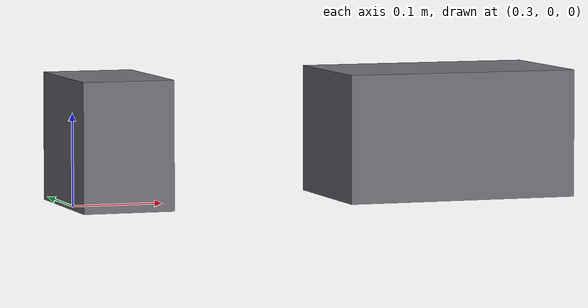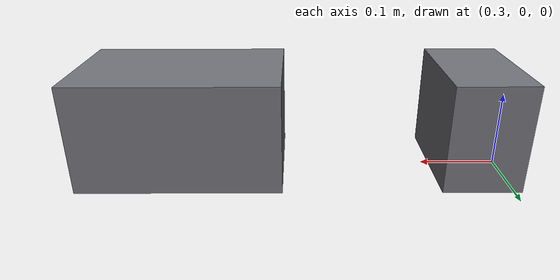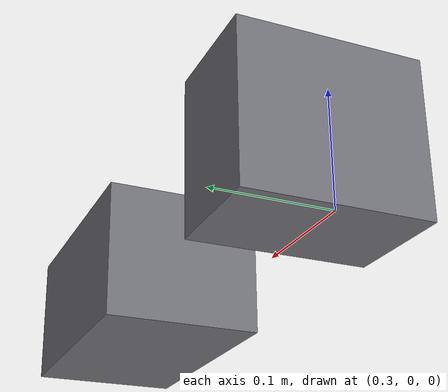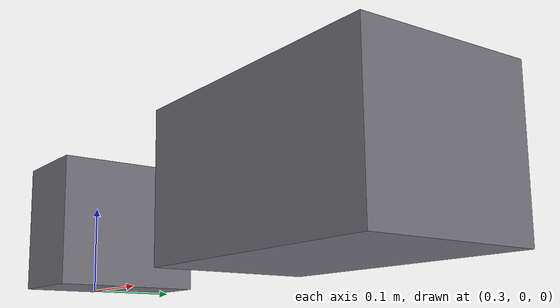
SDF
<?xml version="1.0"?>
<sdf version="1.7">
  <model name="oim_shelf_gap"><static>true</static>
    <link name="shelf_1">
      <pose>0.72 0.0 0.07 0 0 0</pose>
      <collision name="collision"><geometry><box><size>0.26 0.16 0.14</size></box></geometry>
        <surface><friction><ode><mu>0.8</mu><mu2>0.8</mu2></ode></friction></surface>
      </collision>
      <visual name="visual"><geometry><box><size>0.26 0.16 0.14</size></box></geometry>
        <material><diffuse>0.45 0.45 0.48 1</diffuse></material></visual>
    </link>
    <link name="shelf_2">
      <pose>0.33999999999999997 0.0 0.07 0 0 0</pose>
      <collision name="collision"><geometry><box><size>0.1 0.16 0.14</size></box></geometry>
        <surface><friction><ode><mu>0.8</mu><mu2>0.8</mu2></ode></friction></surface>
      </collision>
      <visual name="visual"><geometry><box><size>0.1 0.16 0.14</size></box></geometry>
        <material><diffuse>0.45 0.45 0.48 1</diffuse></material></visual>
    </link>
  </model>
</sdf>
